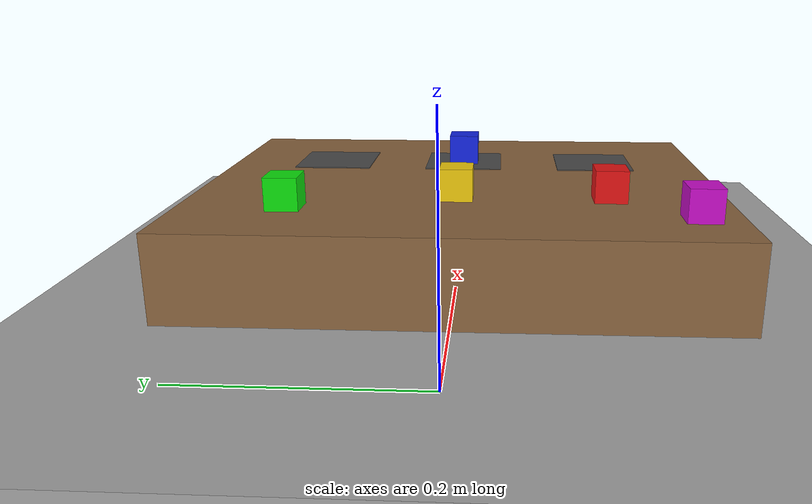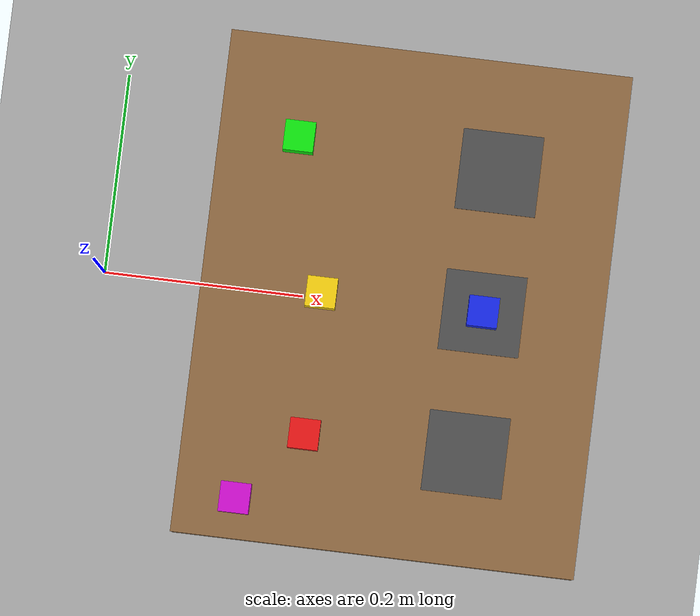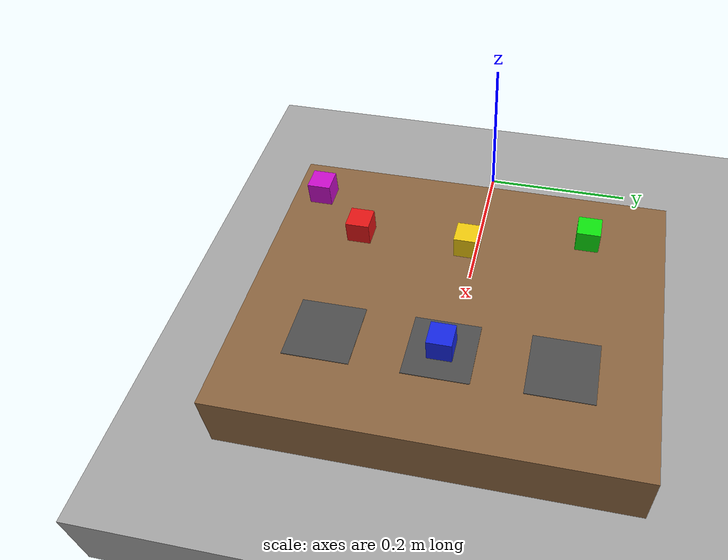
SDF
<?xml version='1.0' encoding='utf-8'?>
<sdf version="1.7">
  <world name="bai3">
    <gravity>0 0 -9.81</gravity>
    <physics name="physics" type="ignored">
      <max_step_size>.001</max_step_size>
      <real_time_factor>1</real_time_factor>
    </physics>
    <plugin filename="libignition-gazebo-physics-system.so" name="ignition::gazebo::systems::Physics" />
    <plugin filename="libignition-gazebo-user-commands-system.so" name="ignition::gazebo::systems::UserCommands" />
    <plugin filename="libignition-gazebo-scene-broadcaster-system.so" name="ignition::gazebo::systems::SceneBroadcaster" />
    <scene>
      <ambient>.6 .6 .6 1</ambient>
      <background>.85 .88 .92 1</background>
      <shadows>true</shadows>
    </scene>
    <light name="sun" type="directional">
      <pose>0 0 10 0 0 0</pose>
      <diffuse>.9 .9 .9 1</diffuse>
      <specular>.2 .2 .2 1</specular>
      <direction>-.5 -.5 -1</direction>
      <cast_shadows>true</cast_shadows>
    </light>
    <model name="ground_plane">
      <static>true</static>
      <pose>0 0 -0.05 0 0 0</pose>
      <link name="link">
        <collision name="collision">
          <geometry>
            <box>
              <size>20 20 0.1</size>
            </box>
          </geometry>
        </collision>
        <visual name="visual">
          <geometry>
            <box>
              <size>20 20 0.1</size>
            </box>
          </geometry>
          <material>
            <ambient>.65 .65 .65 1</ambient>
            <diffuse>.65 .65 .65 1</diffuse>
          </material>
        </visual>
      </link>
    </model>
    <model name="work_table">
      <static>true</static>
      <pose>0.3 0 0.04 0 0 0</pose>
      <link name="link">
        <collision name="collision">
          <geometry>
            <box>
              <size>0.4 0.5 0.08</size>
            </box>
          </geometry>
        </collision>
        <visual name="visual">
          <geometry>
            <box>
              <size>0.4 0.5 0.08</size>
            </box>
          </geometry>
          <material>
            <ambient>.55 .40 .25 1</ambient>
            <diffuse>.55 .40 .25 1</diffuse>
          </material>
        </visual>
      </link>
    </model>
    <model name="red_cube">
      <static>false</static>
      <pose>0.22 -0.14 0.096 0 0 0</pose>
      <link name="link">
        <inertial>
          <mass>0.05</mass>
          <inertia>
            <ixx>7.5e-06</ixx>
            <iyy>7.5e-06</iyy>
            <izz>7.5e-06</izz>
            <ixy>0</ixy>
            <ixz>0</ixz>
            <iyz>0</iyz>
          </inertia>
        </inertial>
        <collision name="collision">
          <geometry>
            <box>
              <size>0.03 0.03 0.03</size>
            </box>
          </geometry>
        </collision>
        <visual name="visual">
          <geometry>
            <box>
              <size>0.03 0.03 0.03</size>
            </box>
          </geometry>
          <material>
            <ambient>.9 .08 .08 1</ambient>
            <diffuse>.9 .08 .08 1</diffuse>
          </material>
        </visual>
      </link>
    </model>
    <model name="yellow_cube">
      <static>false</static>
      <pose>0.22 0 0.096 0 0 0</pose>
      <link name="link">
        <inertial>
          <mass>0.05</mass>
          <inertia>
            <ixx>7.5e-06</ixx>
            <iyy>7.5e-06</iyy>
            <izz>7.5e-06</izz>
            <ixy>0</ixy>
            <ixz>0</ixz>
            <iyz>0</iyz>
          </inertia>
        </inertial>
        <collision name="collision">
          <geometry>
            <box>
              <size>0.03 0.03 0.03</size>
            </box>
          </geometry>
        </collision>
        <visual name="visual">
          <geometry>
            <box>
              <size>0.03 0.03 0.03</size>
            </box>
          </geometry>
          <material>
            <ambient>.95 .8 .05 1</ambient>
            <diffuse>.95 .8 .05 1</diffuse>
          </material>
        </visual>
      </link>
    </model>
    <model name="blue_cube">
      <static>false</static>
      <pose>0.38 0 0.096 0 0 0</pose>
      <link name="link">
        <inertial>
          <mass>0.05</mass>
          <inertia>
            <ixx>7.5e-06</ixx>
            <iyy>7.5e-06</iyy>
            <izz>7.5e-06</izz>
            <ixy>0</ixy>
            <ixz>0</ixz>
            <iyz>0</iyz>
          </inertia>
        </inertial>
        <collision name="collision">
          <geometry>
            <box>
              <size>0.03 0.03 0.03</size>
            </box>
          </geometry>
        </collision>
        <visual name="visual">
          <geometry>
            <box>
              <size>0.03 0.03 0.03</size>
            </box>
          </geometry>
          <material>
            <ambient>.08 .15 .9 1</ambient>
            <diffuse>.08 .15 .9 1</diffuse>
          </material>
        </visual>
      </link>
    </model>
    <model name="zone_a">
      <static>true</static>
      <pose>0.38 -0.14 0.0805 0 0 0</pose>
      <link name="link">
        <visual name="visual">
          <geometry>
            <box>
              <size>0.08 0.08 0.001</size>
            </box>
          </geometry>
          <material>
            <ambient>.3 .3 .3 1</ambient>
            <diffuse>.3 .3 .3 1</diffuse>
          </material>
        </visual>
      </link>
    </model>
    <model name="zone_b">
      <static>true</static>
      <pose>0.38 0 0.0805 0 0 0</pose>
      <link name="link">
        <visual name="visual">
          <geometry>
            <box>
              <size>0.08 0.08 0.001</size>
            </box>
          </geometry>
          <material>
            <ambient>.3 .3 .3 1</ambient>
            <diffuse>.3 .3 .3 1</diffuse>
          </material>
        </visual>
      </link>
    </model>
    <model name="zone_c">
      <static>true</static>
      <pose>0.38 0.14 0.0805 0 0 0</pose>
      <link name="link">
        <visual name="visual">
          <geometry>
            <box>
              <size>0.08 0.08 0.001</size>
            </box>
          </geometry>
          <material>
            <ambient>.3 .3 .3 1</ambient>
            <diffuse>.3 .3 .3 1</diffuse>
          </material>
        </visual>
      </link>
    </model>
    <plugin filename="libignition-gazebo-sensors-system.so" name="ignition::gazebo::systems::Sensors">
      <render_engine>ogre2</render_engine>
    </plugin>
    <model name="green_cube">
      <static>false</static>
      <pose>0.18 0.15 0.096 0 0 0</pose>
      <link name="link">
        <inertial>
          <mass>0.05</mass>
          <inertia>
            <ixx>7.5e-06</ixx>
            <iyy>7.5e-06</iyy>
            <izz>7.5e-06</izz>
            <ixy>0</ixy>
            <ixz>0</ixz>
            <iyz>0</iyz>
          </inertia>
        </inertial>
        <collision name="collision">
          <geometry>
            <box>
              <size>0.03 0.03 0.03</size>
            </box>
          </geometry>
        </collision>
        <visual name="visual">
          <geometry>
            <box>
              <size>0.03 0.03 0.03</size>
            </box>
          </geometry>
          <material>
            <ambient>0.05 0.9 0.05 1</ambient>
            <diffuse>0.05 0.9 0.05 1</diffuse>
          </material>
        </visual>
      </link>
    </model>
    <model name="purple_cube">
      <static>false</static>
      <pose>0.16 -0.21 0.096 0 0 0</pose>
      <link name="link">
        <inertial>
          <mass>0.05</mass>
          <inertia>
            <ixx>7.5e-06</ixx>
            <iyy>7.5e-06</iyy>
            <izz>7.5e-06</izz>
            <ixy>0</ixy>
            <ixz>0</ixz>
            <iyz>0</iyz>
          </inertia>
        </inertial>
        <collision name="collision">
          <geometry>
            <box>
              <size>0.03 0.03 0.03</size>
            </box>
          </geometry>
        </collision>
        <visual name="visual">
          <geometry>
            <box>
              <size>0.03 0.03 0.03</size>
            </box>
          </geometry>
          <material>
            <ambient>0.8 0.05 0.8 1</ambient>
            <diffuse>0.8 0.05 0.8 1</diffuse>
          </material>
        </visual>
      </link>
    </model>
    <model name="overhead_rgbd">
      <static>true</static>
      <pose>0.3 -0.5 0.75 0 0.9188002767195014 1.5707963267948966</pose>
      <link name="camera_link">
        <sensor name="rgbd" type="rgbd_camera">
          <always_on>true</always_on>
          <update_rate>5</update_rate>
          <topic>/bai3/camera</topic>
          <visualize>true</visualize>
          <camera>
            <horizontal_fov>1.0</horizontal_fov>
            <image>
              <width>400</width>
              <height>300</height>
              <format>R8G8B8</format>
            </image>
            <clip>
              <near>.1</near>
              <far>3</far>
            </clip>
          </camera>
        </sensor>
      </link>
    </model>
    </world>
</sdf>
